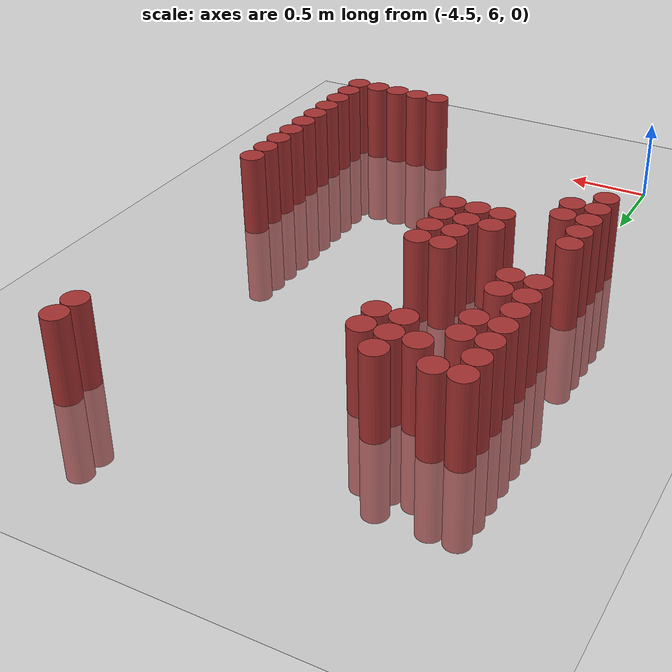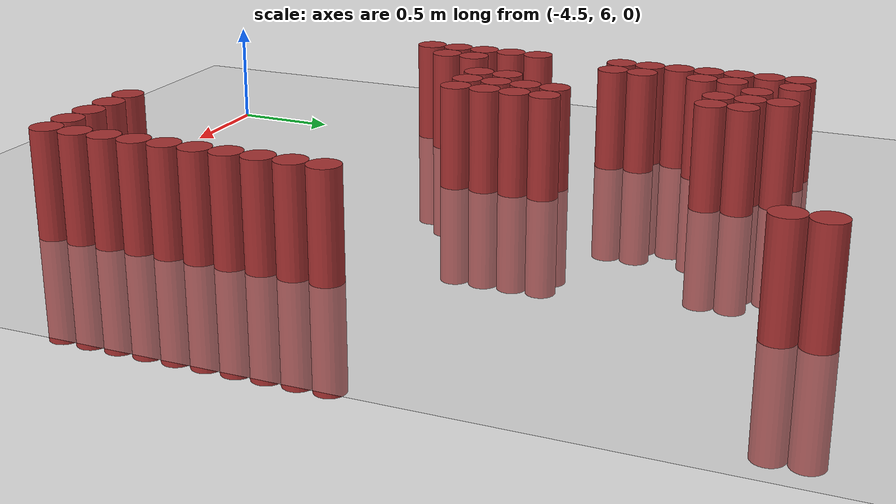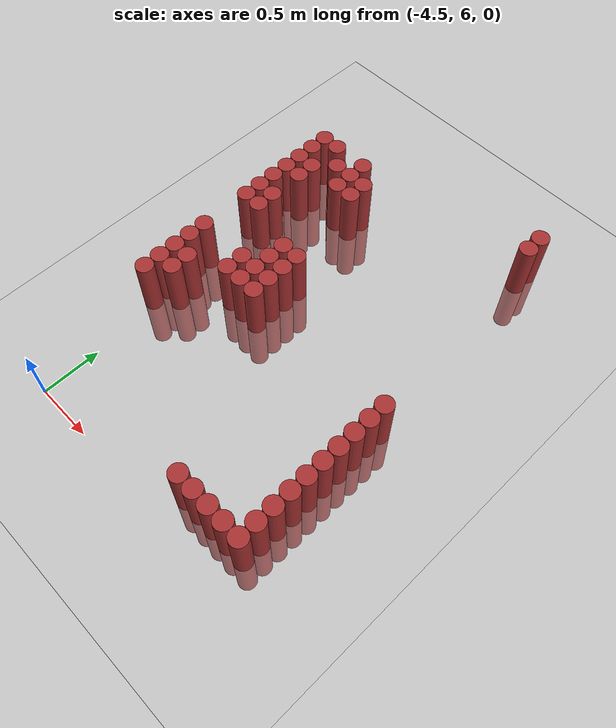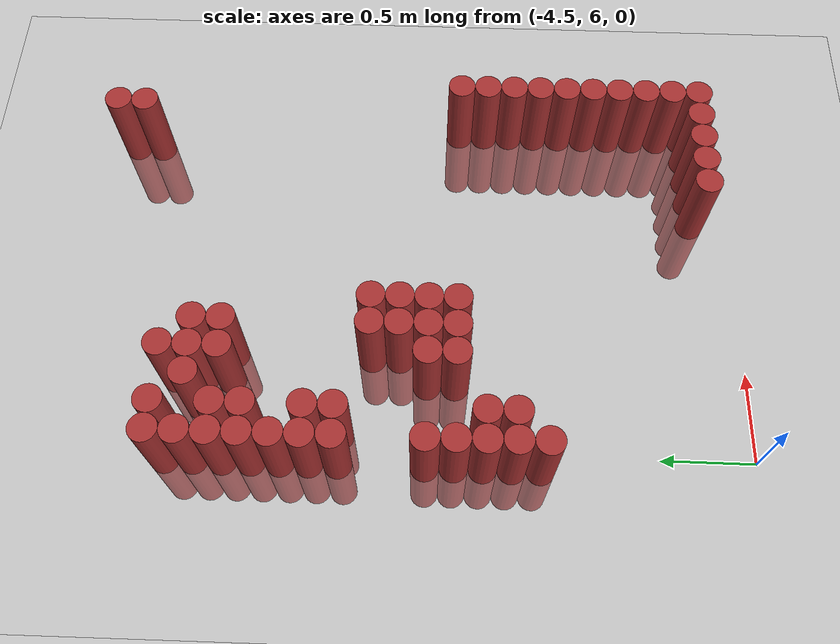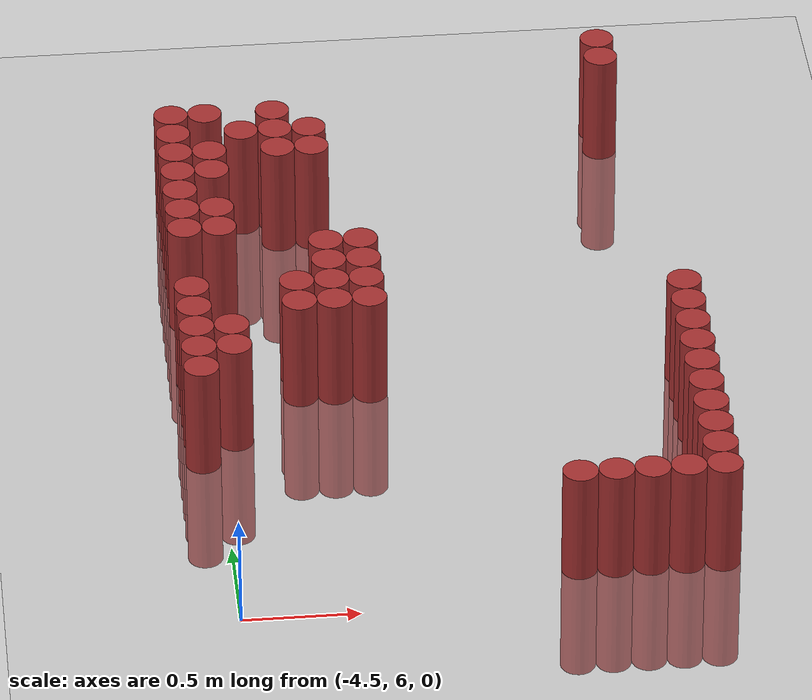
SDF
<sdf version="1.6">
 <world name="default">
  <model name="ground_plane">
   <static>1</static>
   <link name="link">
    <collision name="collision">
     <geometry><plane><normal>0 0 1</normal><size>100 100</size></plane></geometry>
     <surface><friction><ode><mu>100</mu><mu2>50</mu2></ode></friction></surface>
    </collision>
    <visual name="visual">
     <cast_shadows>0</cast_shadows>
     <geometry><plane><normal>0 0 1</normal><size>100 100</size></plane></geometry>
     <material>
      <script><uri>file://media/materials/scripts/gazebo.material</uri><name>Gazebo/Grey</name></script>
     </material>
    </visual>
   </link>
  </model>
  <model name="unit_cylinder_272">
   <static>1</static>
   <pose>-4.575000 7.125000 0.000000 0.000000 0.000000 0.000000</pose>
   <link name="link">
    <inertial>
     <mass>1</mass>
     <inertia><ixx>0.145833</ixx><ixy>0</ixy><ixz>0</ixz><iyy>0.145833</iyy><iyz>0</iyz><izz>0.125</izz></inertia>
    </inertial>
    <collision name="collision">
     <geometry><cylinder><radius>0.075000</radius><length>1</length></cylinder></geometry>
    </collision>
    <visual name="visual">
     <geometry><cylinder><radius>0.075000</radius><length>1</length></cylinder></geometry>
     <material>
      <ambient>0.648000 0.192000 0.192000 1</ambient>
      <diffuse>0.648000 0.192000 0.192000 1</diffuse>
     </material>
     <material>
      <script><name>Gazebo/Grey</name><uri>file://media/materials/scripts/gazebo.material</uri></script>
     </material>
    </visual>
   </link>
  </model>
  <model name="unit_cylinder_273">
   <static>1</static>
   <pose>-4.575000 7.275000 0.000000 0.000000 0.000000 0.000000</pose>
   <link name="link">
    <inertial>
     <mass>1</mass>
     <inertia><ixx>0.145833</ixx><ixy>0</ixy><ixz>0</ixz><iyy>0.145833</iyy><iyz>0</iyz><izz>0.125</izz></inertia>
    </inertial>
    <collision name="collision">
     <geometry><cylinder><radius>0.075000</radius><length>1</length></cylinder></geometry>
    </collision>
    <visual name="visual">
     <geometry><cylinder><radius>0.075000</radius><length>1</length></cylinder></geometry>
     <material>
      <ambient>0.648000 0.192000 0.192000 1</ambient>
      <diffuse>0.648000 0.192000 0.192000 1</diffuse>
     </material>
     <material>
      <script><name>Gazebo/Grey</name><uri>file://media/materials/scripts/gazebo.material</uri></script>
     </material>
    </visual>
   </link>
  </model>
  <model name="unit_cylinder_274">
   <static>1</static>
   <pose>-4.575000 7.425000 0.000000 0.000000 0.000000 0.000000</pose>
   <link name="link">
    <inertial>
     <mass>1</mass>
     <inertia><ixx>0.145833</ixx><ixy>0</ixy><ixz>0</ixz><iyy>0.145833</iyy><iyz>0</iyz><izz>0.125</izz></inertia>
    </inertial>
    <collision name="collision">
     <geometry><cylinder><radius>0.075000</radius><length>1</length></cylinder></geometry>
    </collision>
    <visual name="visual">
     <geometry><cylinder><radius>0.075000</radius><length>1</length></cylinder></geometry>
     <material>
      <ambient>0.648000 0.192000 0.192000 1</ambient>
      <diffuse>0.648000 0.192000 0.192000 1</diffuse>
     </material>
     <material>
      <script><name>Gazebo/Grey</name><uri>file://media/materials/scripts/gazebo.material</uri></script>
     </material>
    </visual>
   </link>
  </model>
  <model name="unit_cylinder_275">
   <static>1</static>
   <pose>-4.575000 7.575000 0.000000 0.000000 0.000000 0.000000</pose>
   <link name="link">
    <inertial>
     <mass>1</mass>
     <inertia><ixx>0.145833</ixx><ixy>0</ixy><ixz>0</ixz><iyy>0.145833</iyy><iyz>0</iyz><izz>0.125</izz></inertia>
    </inertial>
    <collision name="collision">
     <geometry><cylinder><radius>0.075000</radius><length>1</length></cylinder></geometry>
    </collision>
    <visual name="visual">
     <geometry><cylinder><radius>0.075000</radius><length>1</length></cylinder></geometry>
     <material>
      <ambient>0.648000 0.192000 0.192000 1</ambient>
      <diffuse>0.648000 0.192000 0.192000 1</diffuse>
     </material>
     <material>
      <script><name>Gazebo/Grey</name><uri>file://media/materials/scripts/gazebo.material</uri></script>
     </material>
    </visual>
   </link>
  </model>
  <model name="unit_cylinder_276">
   <static>1</static>
   <pose>-4.575000 7.725000 0.000000 0.000000 0.000000 0.000000</pose>
   <link name="link">
    <inertial>
     <mass>1</mass>
     <inertia><ixx>0.145833</ixx><ixy>0</ixy><ixz>0</ixz><iyy>0.145833</iyy><iyz>0</iyz><izz>0.125</izz></inertia>
    </inertial>
    <collision name="collision">
     <geometry><cylinder><radius>0.075000</radius><length>1</length></cylinder></geometry>
    </collision>
    <visual name="visual">
     <geometry><cylinder><radius>0.075000</radius><length>1</length></cylinder></geometry>
     <material>
      <ambient>0.648000 0.192000 0.192000 1</ambient>
      <diffuse>0.648000 0.192000 0.192000 1</diffuse>
     </material>
     <material>
      <script><name>Gazebo/Grey</name><uri>file://media/materials/scripts/gazebo.material</uri></script>
     </material>
    </visual>
   </link>
  </model>
  <model name="unit_cylinder_277">
   <static>1</static>
   <pose>-4.575000 8.175000 0.000000 0.000000 0.000000 0.000000</pose>
   <link name="link">
    <inertial>
     <mass>1</mass>
     <inertia><ixx>0.145833</ixx><ixy>0</ixy><ixz>0</ixz><iyy>0.145833</iyy><iyz>0</iyz><izz>0.125</izz></inertia>
    </inertial>
    <collision name="collision">
     <geometry><cylinder><radius>0.075000</radius><length>1</length></cylinder></geometry>
    </collision>
    <visual name="visual">
     <geometry><cylinder><radius>0.075000</radius><length>1</length></cylinder></geometry>
     <material>
      <ambient>0.648000 0.192000 0.192000 1</ambient>
      <diffuse>0.648000 0.192000 0.192000 1</diffuse>
     </material>
     <material>
      <script><name>Gazebo/Grey</name><uri>file://media/materials/scripts/gazebo.material</uri></script>
     </material>
    </visual>
   </link>
  </model>
  <model name="unit_cylinder_278">
   <static>1</static>
   <pose>-4.575000 8.325000 0.000000 0.000000 0.000000 0.000000</pose>
   <link name="link">
    <inertial>
     <mass>1</mass>
     <inertia><ixx>0.145833</ixx><ixy>0</ixy><ixz>0</ixz><iyy>0.145833</iyy><iyz>0</iyz><izz>0.125</izz></inertia>
    </inertial>
    <collision name="collision">
     <geometry><cylinder><radius>0.075000</radius><length>1</length></cylinder></geometry>
    </collision>
    <visual name="visual">
     <geometry><cylinder><radius>0.075000</radius><length>1</length></cylinder></geometry>
     <material>
      <ambient>0.648000 0.192000 0.192000 1</ambient>
      <diffuse>0.648000 0.192000 0.192000 1</diffuse>
     </material>
     <material>
      <script><name>Gazebo/Grey</name><uri>file://media/materials/scripts/gazebo.material</uri></script>
     </material>
    </visual>
   </link>
  </model>
  <model name="unit_cylinder_279">
   <static>1</static>
   <pose>-4.575000 8.475000 0.000000 0.000000 0.000000 0.000000</pose>
   <link name="link">
    <inertial>
     <mass>1</mass>
     <inertia><ixx>0.145833</ixx><ixy>0</ixy><ixz>0</ixz><iyy>0.145833</iyy><iyz>0</iyz><izz>0.125</izz></inertia>
    </inertial>
    <collision name="collision">
     <geometry><cylinder><radius>0.075000</radius><length>1</length></cylinder></geometry>
    </collision>
    <visual name="visual">
     <geometry><cylinder><radius>0.075000</radius><length>1</length></cylinder></geometry>
     <material>
      <ambient>0.648000 0.192000 0.192000 1</ambient>
      <diffuse>0.648000 0.192000 0.192000 1</diffuse>
     </material>
     <material>
      <script><name>Gazebo/Grey</name><uri>file://media/materials/scripts/gazebo.material</uri></script>
     </material>
    </visual>
   </link>
  </model>
  <model name="unit_cylinder_280">
   <static>1</static>
   <pose>-4.575000 8.625000 0.000000 0.000000 0.000000 0.000000</pose>
   <link name="link">
    <inertial>
     <mass>1</mass>
     <inertia><ixx>0.145833</ixx><ixy>0</ixy><ixz>0</ixz><iyy>0.145833</iyy><iyz>0</iyz><izz>0.125</izz></inertia>
    </inertial>
    <collision name="collision">
     <geometry><cylinder><radius>0.075000</radius><length>1</length></cylinder></geometry>
    </collision>
    <visual name="visual">
     <geometry><cylinder><radius>0.075000</radius><length>1</length></cylinder></geometry>
     <material>
      <ambient>0.648000 0.192000 0.192000 1</ambient>
      <diffuse>0.648000 0.192000 0.192000 1</diffuse>
     </material>
     <material>
      <script><name>Gazebo/Grey</name><uri>file://media/materials/scripts/gazebo.material</uri></script>
     </material>
    </visual>
   </link>
  </model>
  <model name="unit_cylinder_281">
   <static>1</static>
   <pose>-4.575000 8.775000 0.000000 0.000000 0.000000 0.000000</pose>
   <link name="link">
    <inertial>
     <mass>1</mass>
     <inertia><ixx>0.145833</ixx><ixy>0</ixy><ixz>0</ixz><iyy>0.145833</iyy><iyz>0</iyz><izz>0.125</izz></inertia>
    </inertial>
    <collision name="collision">
     <geometry><cylinder><radius>0.075000</radius><length>1</length></cylinder></geometry>
    </collision>
    <visual name="visual">
     <geometry><cylinder><radius>0.075000</radius><length>1</length></cylinder></geometry>
     <material>
      <ambient>0.648000 0.192000 0.192000 1</ambient>
      <diffuse>0.648000 0.192000 0.192000 1</diffuse>
     </material>
     <material>
      <script><name>Gazebo/Grey</name><uri>file://media/materials/scripts/gazebo.material</uri></script>
     </material>
    </visual>
   </link>
  </model>
  <model name="unit_cylinder_282">
   <static>1</static>
   <pose>-4.575000 8.925000 0.000000 0.000000 0.000000 0.000000</pose>
   <link name="link">
    <inertial>
     <mass>1</mass>
     <inertia><ixx>0.145833</ixx><ixy>0</ixy><ixz>0</ixz><iyy>0.145833</iyy><iyz>0</iyz><izz>0.125</izz></inertia>
    </inertial>
    <collision name="collision">
     <geometry><cylinder><radius>0.075000</radius><length>1</length></cylinder></geometry>
    </collision>
    <visual name="visual">
     <geometry><cylinder><radius>0.075000</radius><length>1</length></cylinder></geometry>
     <material>
      <ambient>0.648000 0.192000 0.192000 1</ambient>
      <diffuse>0.648000 0.192000 0.192000 1</diffuse>
     </material>
     <material>
      <script><name>Gazebo/Grey</name><uri>file://media/materials/scripts/gazebo.material</uri></script>
     </material>
    </visual>
   </link>
  </model>
  <model name="unit_cylinder_283">
   <static>1</static>
   <pose>-4.575000 9.075000 0.000000 0.000000 0.000000 0.000000</pose>
   <link name="link">
    <inertial>
     <mass>1</mass>
     <inertia><ixx>0.145833</ixx><ixy>0</ixy><ixz>0</ixz><iyy>0.145833</iyy><iyz>0</iyz><izz>0.125</izz></inertia>
    </inertial>
    <collision name="collision">
     <geometry><cylinder><radius>0.075000</radius><length>1</length></cylinder></geometry>
    </collision>
    <visual name="visual">
     <geometry><cylinder><radius>0.075000</radius><length>1</length></cylinder></geometry>
     <material>
      <ambient>0.648000 0.192000 0.192000 1</ambient>
      <diffuse>0.648000 0.192000 0.192000 1</diffuse>
     </material>
     <material>
      <script><name>Gazebo/Grey</name><uri>file://media/materials/scripts/gazebo.material</uri></script>
     </material>
    </visual>
   </link>
  </model>
  <model name="unit_cylinder_284">
   <static>1</static>
   <pose>-4.425000 7.275000 0.000000 0.000000 0.000000 0.000000</pose>
   <link name="link">
    <inertial>
     <mass>1</mass>
     <inertia><ixx>0.145833</ixx><ixy>0</ixy><ixz>0</ixz><iyy>0.145833</iyy><iyz>0</iyz><izz>0.125</izz></inertia>
    </inertial>
    <collision name="collision">
     <geometry><cylinder><radius>0.075000</radius><length>1</length></cylinder></geometry>
    </collision>
    <visual name="visual">
     <geometry><cylinder><radius>0.075000</radius><length>1</length></cylinder></geometry>
     <material>
      <ambient>0.648000 0.192000 0.192000 1</ambient>
      <diffuse>0.648000 0.192000 0.192000 1</diffuse>
     </material>
     <material>
      <script><name>Gazebo/Grey</name><uri>file://media/materials/scripts/gazebo.material</uri></script>
     </material>
    </visual>
   </link>
  </model>
  <model name="unit_cylinder_285">
   <static>1</static>
   <pose>-4.425000 7.425000 0.000000 0.000000 0.000000 0.000000</pose>
   <link name="link">
    <inertial>
     <mass>1</mass>
     <inertia><ixx>0.145833</ixx><ixy>0</ixy><ixz>0</ixz><iyy>0.145833</iyy><iyz>0</iyz><izz>0.125</izz></inertia>
    </inertial>
    <collision name="collision">
     <geometry><cylinder><radius>0.075000</radius><length>1</length></cylinder></geometry>
    </collision>
    <visual name="visual">
     <geometry><cylinder><radius>0.075000</radius><length>1</length></cylinder></geometry>
     <material>
      <ambient>0.648000 0.192000 0.192000 1</ambient>
      <diffuse>0.648000 0.192000 0.192000 1</diffuse>
     </material>
     <material>
      <script><name>Gazebo/Grey</name><uri>file://media/materials/scripts/gazebo.material</uri></script>
     </material>
    </visual>
   </link>
  </model>
  <model name="unit_cylinder_286">
   <static>1</static>
   <pose>-4.425000 8.175000 0.000000 0.000000 0.000000 0.000000</pose>
   <link name="link">
    <inertial>
     <mass>1</mass>
     <inertia><ixx>0.145833</ixx><ixy>0</ixy><ixz>0</ixz><iyy>0.145833</iyy><iyz>0</iyz><izz>0.125</izz></inertia>
    </inertial>
    <collision name="collision">
     <geometry><cylinder><radius>0.075000</radius><length>1</length></cylinder></geometry>
    </collision>
    <visual name="visual">
     <geometry><cylinder><radius>0.075000</radius><length>1</length></cylinder></geometry>
     <material>
      <ambient>0.648000 0.192000 0.192000 1</ambient>
      <diffuse>0.648000 0.192000 0.192000 1</diffuse>
     </material>
     <material>
      <script><name>Gazebo/Grey</name><uri>file://media/materials/scripts/gazebo.material</uri></script>
     </material>
    </visual>
   </link>
  </model>
  <model name="unit_cylinder_287">
   <static>1</static>
   <pose>-4.425000 8.325000 0.000000 0.000000 0.000000 0.000000</pose>
   <link name="link">
    <inertial>
     <mass>1</mass>
     <inertia><ixx>0.145833</ixx><ixy>0</ixy><ixz>0</ixz><iyy>0.145833</iyy><iyz>0</iyz><izz>0.125</izz></inertia>
    </inertial>
    <collision name="collision">
     <geometry><cylinder><radius>0.075000</radius><length>1</length></cylinder></geometry>
    </collision>
    <visual name="visual">
     <geometry><cylinder><radius>0.075000</radius><length>1</length></cylinder></geometry>
     <material>
      <ambient>0.648000 0.192000 0.192000 1</ambient>
      <diffuse>0.648000 0.192000 0.192000 1</diffuse>
     </material>
     <material>
      <script><name>Gazebo/Grey</name><uri>file://media/materials/scripts/gazebo.material</uri></script>
     </material>
    </visual>
   </link>
  </model>
  <model name="unit_cylinder_288">
   <static>1</static>
   <pose>-4.425000 8.625000 0.000000 0.000000 0.000000 0.000000</pose>
   <link name="link">
    <inertial>
     <mass>1</mass>
     <inertia><ixx>0.145833</ixx><ixy>0</ixy><ixz>0</ixz><iyy>0.145833</iyy><iyz>0</iyz><izz>0.125</izz></inertia>
    </inertial>
    <collision name="collision">
     <geometry><cylinder><radius>0.075000</radius><length>1</length></cylinder></geometry>
    </collision>
    <visual name="visual">
     <geometry><cylinder><radius>0.075000</radius><length>1</length></cylinder></geometry>
     <material>
      <ambient>0.648000 0.192000 0.192000 1</ambient>
      <diffuse>0.648000 0.192000 0.192000 1</diffuse>
     </material>
     <material>
      <script><name>Gazebo/Grey</name><uri>file://media/materials/scripts/gazebo.material</uri></script>
     </material>
    </visual>
   </link>
  </model>
  <model name="unit_cylinder_289">
   <static>1</static>
   <pose>-4.425000 8.775000 0.000000 0.000000 0.000000 0.000000</pose>
   <link name="link">
    <inertial>
     <mass>1</mass>
     <inertia><ixx>0.145833</ixx><ixy>0</ixy><ixz>0</ixz><iyy>0.145833</iyy><iyz>0</iyz><izz>0.125</izz></inertia>
    </inertial>
    <collision name="collision">
     <geometry><cylinder><radius>0.075000</radius><length>1</length></cylinder></geometry>
    </collision>
    <visual name="visual">
     <geometry><cylinder><radius>0.075000</radius><length>1</length></cylinder></geometry>
     <material>
      <ambient>0.648000 0.192000 0.192000 1</ambient>
      <diffuse>0.648000 0.192000 0.192000 1</diffuse>
     </material>
     <material>
      <script><name>Gazebo/Grey</name><uri>file://media/materials/scripts/gazebo.material</uri></script>
     </material>
    </visual>
   </link>
  </model>
  <model name="unit_cylinder_290">
   <static>1</static>
   <pose>-4.425000 9.075000 0.000000 0.000000 0.000000 0.000000</pose>
   <link name="link">
    <inertial>
     <mass>1</mass>
     <inertia><ixx>0.145833</ixx><ixy>0</ixy><ixz>0</ixz><iyy>0.145833</iyy><iyz>0</iyz><izz>0.125</izz></inertia>
    </inertial>
    <collision name="collision">
     <geometry><cylinder><radius>0.075000</radius><length>1</length></cylinder></geometry>
    </collision>
    <visual name="visual">
     <geometry><cylinder><radius>0.075000</radius><length>1</length></cylinder></geometry>
     <material>
      <ambient>0.648000 0.192000 0.192000 1</ambient>
      <diffuse>0.648000 0.192000 0.192000 1</diffuse>
     </material>
     <material>
      <script><name>Gazebo/Grey</name><uri>file://media/materials/scripts/gazebo.material</uri></script>
     </material>
    </visual>
   </link>
  </model>
  <model name="unit_cylinder_291">
   <static>1</static>
   <pose>-4.275000 8.925000 0.000000 0.000000 0.000000 0.000000</pose>
   <link name="link">
    <inertial>
     <mass>1</mass>
     <inertia><ixx>0.145833</ixx><ixy>0</ixy><ixz>0</ixz><iyy>0.145833</iyy><iyz>0</iyz><izz>0.125</izz></inertia>
    </inertial>
    <collision name="collision">
     <geometry><cylinder><radius>0.075000</radius><length>1</length></cylinder></geometry>
    </collision>
    <visual name="visual">
     <geometry><cylinder><radius>0.075000</radius><length>1</length></cylinder></geometry>
     <material>
      <ambient>0.648000 0.192000 0.192000 1</ambient>
      <diffuse>0.648000 0.192000 0.192000 1</diffuse>
     </material>
     <material>
      <script><name>Gazebo/Grey</name><uri>file://media/materials/scripts/gazebo.material</uri></script>
     </material>
    </visual>
   </link>
  </model>
  <model name="unit_cylinder_292">
   <static>1</static>
   <pose>-4.125000 7.575000 0.000000 0.000000 0.000000 0.000000</pose>
   <link name="link">
    <inertial>
     <mass>1</mass>
     <inertia><ixx>0.145833</ixx><ixy>0</ixy><ixz>0</ixz><iyy>0.145833</iyy><iyz>0</iyz><izz>0.125</izz></inertia>
    </inertial>
    <collision name="collision">
     <geometry><cylinder><radius>0.075000</radius><length>1</length></cylinder></geometry>
    </collision>
    <visual name="visual">
     <geometry><cylinder><radius>0.075000</radius><length>1</length></cylinder></geometry>
     <material>
      <ambient>0.648000 0.192000 0.192000 1</ambient>
      <diffuse>0.648000 0.192000 0.192000 1</diffuse>
     </material>
     <material>
      <script><name>Gazebo/Grey</name><uri>file://media/materials/scripts/gazebo.material</uri></script>
     </material>
    </visual>
   </link>
  </model>
  <model name="unit_cylinder_293">
   <static>1</static>
   <pose>-4.125000 7.725000 0.000000 0.000000 0.000000 0.000000</pose>
   <link name="link">
    <inertial>
     <mass>1</mass>
     <inertia><ixx>0.145833</ixx><ixy>0</ixy><ixz>0</ixz><iyy>0.145833</iyy><iyz>0</iyz><izz>0.125</izz></inertia>
    </inertial>
    <collision name="collision">
     <geometry><cylinder><radius>0.075000</radius><length>1</length></cylinder></geometry>
    </collision>
    <visual name="visual">
     <geometry><cylinder><radius>0.075000</radius><length>1</length></cylinder></geometry>
     <material>
      <ambient>0.648000 0.192000 0.192000 1</ambient>
      <diffuse>0.648000 0.192000 0.192000 1</diffuse>
     </material>
     <material>
      <script><name>Gazebo/Grey</name><uri>file://media/materials/scripts/gazebo.material</uri></script>
     </material>
    </visual>
   </link>
  </model>
  <model name="unit_cylinder_294">
   <static>1</static>
   <pose>-4.125000 8.775000 0.000000 0.000000 0.000000 0.000000</pose>
   <link name="link">
    <inertial>
     <mass>1</mass>
     <inertia><ixx>0.145833</ixx><ixy>0</ixy><ixz>0</ixz><iyy>0.145833</iyy><iyz>0</iyz><izz>0.125</izz></inertia>
    </inertial>
    <collision name="collision">
     <geometry><cylinder><radius>0.075000</radius><length>1</length></cylinder></geometry>
    </collision>
    <visual name="visual">
     <geometry><cylinder><radius>0.075000</radius><length>1</length></cylinder></geometry>
     <material>
      <ambient>0.648000 0.192000 0.192000 1</ambient>
      <diffuse>0.648000 0.192000 0.192000 1</diffuse>
     </material>
     <material>
      <script><name>Gazebo/Grey</name><uri>file://media/materials/scripts/gazebo.material</uri></script>
     </material>
    </visual>
   </link>
  </model>
  <model name="unit_cylinder_295">
   <static>1</static>
   <pose>-4.125000 8.925000 0.000000 0.000000 0.000000 0.000000</pose>
   <link name="link">
    <inertial>
     <mass>1</mass>
     <inertia><ixx>0.145833</ixx><ixy>0</ixy><ixz>0</ixz><iyy>0.145833</iyy><iyz>0</iyz><izz>0.125</izz></inertia>
    </inertial>
    <collision name="collision">
     <geometry><cylinder><radius>0.075000</radius><length>1</length></cylinder></geometry>
    </collision>
    <visual name="visual">
     <geometry><cylinder><radius>0.075000</radius><length>1</length></cylinder></geometry>
     <material>
      <ambient>0.648000 0.192000 0.192000 1</ambient>
      <diffuse>0.648000 0.192000 0.192000 1</diffuse>
     </material>
     <material>
      <script><name>Gazebo/Grey</name><uri>file://media/materials/scripts/gazebo.material</uri></script>
     </material>
    </visual>
   </link>
  </model>
  <model name="unit_cylinder_296">
   <static>1</static>
   <pose>-4.125000 9.075000 0.000000 0.000000 0.000000 0.000000</pose>
   <link name="link">
    <inertial>
     <mass>1</mass>
     <inertia><ixx>0.145833</ixx><ixy>0</ixy><ixz>0</ixz><iyy>0.145833</iyy><iyz>0</iyz><izz>0.125</izz></inertia>
    </inertial>
    <collision name="collision">
     <geometry><cylinder><radius>0.075000</radius><length>1</length></cylinder></geometry>
    </collision>
    <visual name="visual">
     <geometry><cylinder><radius>0.075000</radius><length>1</length></cylinder></geometry>
     <material>
      <ambient>0.648000 0.192000 0.192000 1</ambient>
      <diffuse>0.648000 0.192000 0.192000 1</diffuse>
     </material>
     <material>
      <script><name>Gazebo/Grey</name><uri>file://media/materials/scripts/gazebo.material</uri></script>
     </material>
    </visual>
   </link>
  </model>
  <model name="unit_cylinder_297">
   <static>1</static>
   <pose>-3.975000 7.575000 0.000000 0.000000 0.000000 0.000000</pose>
   <link name="link">
    <inertial>
     <mass>1</mass>
     <inertia><ixx>0.145833</ixx><ixy>0</ixy><ixz>0</ixz><iyy>0.145833</iyy><iyz>0</iyz><izz>0.125</izz></inertia>
    </inertial>
    <collision name="collision">
     <geometry><cylinder><radius>0.075000</radius><length>1</length></cylinder></geometry>
    </collision>
    <visual name="visual">
     <geometry><cylinder><radius>0.075000</radius><length>1</length></cylinder></geometry>
     <material>
      <ambient>0.648000 0.192000 0.192000 1</ambient>
      <diffuse>0.648000 0.192000 0.192000 1</diffuse>
     </material>
     <material>
      <script><name>Gazebo/Grey</name><uri>file://media/materials/scripts/gazebo.material</uri></script>
     </material>
    </visual>
   </link>
  </model>
  <model name="unit_cylinder_298">
   <static>1</static>
   <pose>-3.975000 7.725000 0.000000 0.000000 0.000000 0.000000</pose>
   <link name="link">
    <inertial>
     <mass>1</mass>
     <inertia><ixx>0.145833</ixx><ixy>0</ixy><ixz>0</ixz><iyy>0.145833</iyy><iyz>0</iyz><izz>0.125</izz></inertia>
    </inertial>
    <collision name="collision">
     <geometry><cylinder><radius>0.075000</radius><length>1</length></cylinder></geometry>
    </collision>
    <visual name="visual">
     <geometry><cylinder><radius>0.075000</radius><length>1</length></cylinder></geometry>
     <material>
      <ambient>0.648000 0.192000 0.192000 1</ambient>
      <diffuse>0.648000 0.192000 0.192000 1</diffuse>
     </material>
     <material>
      <script><name>Gazebo/Grey</name><uri>file://media/materials/scripts/gazebo.material</uri></script>
     </material>
    </visual>
   </link>
  </model>
  <model name="unit_cylinder_299">
   <static>1</static>
   <pose>-3.975000 7.875000 0.000000 0.000000 0.000000 0.000000</pose>
   <link name="link">
    <inertial>
     <mass>1</mass>
     <inertia><ixx>0.145833</ixx><ixy>0</ixy><ixz>0</ixz><iyy>0.145833</iyy><iyz>0</iyz><izz>0.125</izz></inertia>
    </inertial>
    <collision name="collision">
     <geometry><cylinder><radius>0.075000</radius><length>1</length></cylinder></geometry>
    </collision>
    <visual name="visual">
     <geometry><cylinder><radius>0.075000</radius><length>1</length></cylinder></geometry>
     <material>
      <ambient>0.648000 0.192000 0.192000 1</ambient>
      <diffuse>0.648000 0.192000 0.192000 1</diffuse>
     </material>
     <material>
      <script><name>Gazebo/Grey</name><uri>file://media/materials/scripts/gazebo.material</uri></script>
     </material>
    </visual>
   </link>
  </model>
  <model name="unit_cylinder_300">
   <static>1</static>
   <pose>-3.975000 8.025000 0.000000 0.000000 0.000000 0.000000</pose>
   <link name="link">
    <inertial>
     <mass>1</mass>
     <inertia><ixx>0.145833</ixx><ixy>0</ixy><ixz>0</ixz><iyy>0.145833</iyy><iyz>0</iyz><izz>0.125</izz></inertia>
    </inertial>
    <collision name="collision">
     <geometry><cylinder><radius>0.075000</radius><length>1</length></cylinder></geometry>
    </collision>
    <visual name="visual">
     <geometry><cylinder><radius>0.075000</radius><length>1</length></cylinder></geometry>
     <material>
      <ambient>0.648000 0.192000 0.192000 1</ambient>
      <diffuse>0.648000 0.192000 0.192000 1</diffuse>
     </material>
     <material>
      <script><name>Gazebo/Grey</name><uri>file://media/materials/scripts/gazebo.material</uri></script>
     </material>
    </visual>
   </link>
  </model>
  <model name="unit_cylinder_301">
   <static>1</static>
   <pose>-3.975000 8.775000 0.000000 0.000000 0.000000 0.000000</pose>
   <link name="link">
    <inertial>
     <mass>1</mass>
     <inertia><ixx>0.145833</ixx><ixy>0</ixy><ixz>0</ixz><iyy>0.145833</iyy><iyz>0</iyz><izz>0.125</izz></inertia>
    </inertial>
    <collision name="collision">
     <geometry><cylinder><radius>0.075000</radius><length>1</length></cylinder></geometry>
    </collision>
    <visual name="visual">
     <geometry><cylinder><radius>0.075000</radius><length>1</length></cylinder></geometry>
     <material>
      <ambient>0.648000 0.192000 0.192000 1</ambient>
      <diffuse>0.648000 0.192000 0.192000 1</diffuse>
     </material>
     <material>
      <script><name>Gazebo/Grey</name><uri>file://media/materials/scripts/gazebo.material</uri></script>
     </material>
    </visual>
   </link>
  </model>
  <model name="unit_cylinder_302">
   <static>1</static>
   <pose>-3.975000 8.925000 0.000000 0.000000 0.000000 0.000000</pose>
   <link name="link">
    <inertial>
     <mass>1</mass>
     <inertia><ixx>0.145833</ixx><ixy>0</ixy><ixz>0</ixz><iyy>0.145833</iyy><iyz>0</iyz><izz>0.125</izz></inertia>
    </inertial>
    <collision name="collision">
     <geometry><cylinder><radius>0.075000</radius><length>1</length></cylinder></geometry>
    </collision>
    <visual name="visual">
     <geometry><cylinder><radius>0.075000</radius><length>1</length></cylinder></geometry>
     <material>
      <ambient>0.648000 0.192000 0.192000 1</ambient>
      <diffuse>0.648000 0.192000 0.192000 1</diffuse>
     </material>
     <material>
      <script><name>Gazebo/Grey</name><uri>file://media/materials/scripts/gazebo.material</uri></script>
     </material>
    </visual>
   </link>
  </model>
  <model name="unit_cylinder_303">
   <static>1</static>
   <pose>-3.825000 7.575000 0.000000 0.000000 0.000000 0.000000</pose>
   <link name="link">
    <inertial>
     <mass>1</mass>
     <inertia><ixx>0.145833</ixx><ixy>0</ixy><ixz>0</ixz><iyy>0.145833</iyy><iyz>0</iyz><izz>0.125</izz></inertia>
    </inertial>
    <collision name="collision">
     <geometry><cylinder><radius>0.075000</radius><length>1</length></cylinder></geometry>
    </collision>
    <visual name="visual">
     <geometry><cylinder><radius>0.075000</radius><length>1</length></cylinder></geometry>
     <material>
      <ambient>0.648000 0.192000 0.192000 1</ambient>
      <diffuse>0.648000 0.192000 0.192000 1</diffuse>
     </material>
     <material>
      <script><name>Gazebo/Grey</name><uri>file://media/materials/scripts/gazebo.material</uri></script>
     </material>
    </visual>
   </link>
  </model>
  <model name="unit_cylinder_304">
   <static>1</static>
   <pose>-3.825000 7.725000 0.000000 0.000000 0.000000 0.000000</pose>
   <link name="link">
    <inertial>
     <mass>1</mass>
     <inertia><ixx>0.145833</ixx><ixy>0</ixy><ixz>0</ixz><iyy>0.145833</iyy><iyz>0</iyz><izz>0.125</izz></inertia>
    </inertial>
    <collision name="collision">
     <geometry><cylinder><radius>0.075000</radius><length>1</length></cylinder></geometry>
    </collision>
    <visual name="visual">
     <geometry><cylinder><radius>0.075000</radius><length>1</length></cylinder></geometry>
     <material>
      <ambient>0.648000 0.192000 0.192000 1</ambient>
      <diffuse>0.648000 0.192000 0.192000 1</diffuse>
     </material>
     <material>
      <script><name>Gazebo/Grey</name><uri>file://media/materials/scripts/gazebo.material</uri></script>
     </material>
    </visual>
   </link>
  </model>
  <model name="unit_cylinder_305">
   <static>1</static>
   <pose>-3.825000 7.875000 0.000000 0.000000 0.000000 0.000000</pose>
   <link name="link">
    <inertial>
     <mass>1</mass>
     <inertia><ixx>0.145833</ixx><ixy>0</ixy><ixz>0</ixz><iyy>0.145833</iyy><iyz>0</iyz><izz>0.125</izz></inertia>
    </inertial>
    <collision name="collision">
     <geometry><cylinder><radius>0.075000</radius><length>1</length></cylinder></geometry>
    </collision>
    <visual name="visual">
     <geometry><cylinder><radius>0.075000</radius><length>1</length></cylinder></geometry>
     <material>
      <ambient>0.648000 0.192000 0.192000 1</ambient>
      <diffuse>0.648000 0.192000 0.192000 1</diffuse>
     </material>
     <material>
      <script><name>Gazebo/Grey</name><uri>file://media/materials/scripts/gazebo.material</uri></script>
     </material>
    </visual>
   </link>
  </model>
  <model name="unit_cylinder_306">
   <static>1</static>
   <pose>-3.825000 8.025000 0.000000 0.000000 0.000000 0.000000</pose>
   <link name="link">
    <inertial>
     <mass>1</mass>
     <inertia><ixx>0.145833</ixx><ixy>0</ixy><ixz>0</ixz><iyy>0.145833</iyy><iyz>0</iyz><izz>0.125</izz></inertia>
    </inertial>
    <collision name="collision">
     <geometry><cylinder><radius>0.075000</radius><length>1</length></cylinder></geometry>
    </collision>
    <visual name="visual">
     <geometry><cylinder><radius>0.075000</radius><length>1</length></cylinder></geometry>
     <material>
      <ambient>0.648000 0.192000 0.192000 1</ambient>
      <diffuse>0.648000 0.192000 0.192000 1</diffuse>
     </material>
     <material>
      <script><name>Gazebo/Grey</name><uri>file://media/materials/scripts/gazebo.material</uri></script>
     </material>
    </visual>
   </link>
  </model>
  <model name="unit_cylinder_320">
   <static>1</static>
   <pose>-3.075000 6.225000 0.000000 0.000000 0.000000 0.000000</pose>
   <link name="link">
    <inertial>
     <mass>1</mass>
     <inertia><ixx>0.145833</ixx><ixy>0</ixy><ixz>0</ixz><iyy>0.145833</iyy><iyz>0</iyz><izz>0.125</izz></inertia>
    </inertial>
    <collision name="collision">
     <geometry><cylinder><radius>0.075000</radius><length>1</length></cylinder></geometry>
    </collision>
    <visual name="visual">
     <geometry><cylinder><radius>0.075000</radius><length>1</length></cylinder></geometry>
     <material>
      <ambient>0.648000 0.192000 0.192000 1</ambient>
      <diffuse>0.648000 0.192000 0.192000 1</diffuse>
     </material>
     <material>
      <script><name>Gazebo/Grey</name><uri>file://media/materials/scripts/gazebo.material</uri></script>
     </material>
    </visual>
   </link>
  </model>
  <model name="unit_cylinder_322">
   <static>1</static>
   <pose>-2.925000 6.225000 0.000000 0.000000 0.000000 0.000000</pose>
   <link name="link">
    <inertial>
     <mass>1</mass>
     <inertia><ixx>0.145833</ixx><ixy>0</ixy><ixz>0</ixz><iyy>0.145833</iyy><iyz>0</iyz><izz>0.125</izz></inertia>
    </inertial>
    <collision name="collision">
     <geometry><cylinder><radius>0.075000</radius><length>1</length></cylinder></geometry>
    </collision>
    <visual name="visual">
     <geometry><cylinder><radius>0.075000</radius><length>1</length></cylinder></geometry>
     <material>
      <ambient>0.648000 0.192000 0.192000 1</ambient>
      <diffuse>0.648000 0.192000 0.192000 1</diffuse>
     </material>
     <material>
      <script><name>Gazebo/Grey</name><uri>file://media/materials/scripts/gazebo.material</uri></script>
     </material>
    </visual>
   </link>
  </model>
  <model name="unit_cylinder_324">
   <static>1</static>
   <pose>-2.775000 6.225000 0.000000 0.000000 0.000000 0.000000</pose>
   <link name="link">
    <inertial>
     <mass>1</mass>
     <inertia><ixx>0.145833</ixx><ixy>0</ixy><ixz>0</ixz><iyy>0.145833</iyy><iyz>0</iyz><izz>0.125</izz></inertia>
    </inertial>
    <collision name="collision">
     <geometry><cylinder><radius>0.075000</radius><length>1</length></cylinder></geometry>
    </collision>
    <visual name="visual">
     <geometry><cylinder><radius>0.075000</radius><length>1</length></cylinder></geometry>
     <material>
      <ambient>0.648000 0.192000 0.192000 1</ambient>
      <diffuse>0.648000 0.192000 0.192000 1</diffuse>
     </material>
     <material>
      <script><name>Gazebo/Grey</name><uri>file://media/materials/scripts/gazebo.material</uri></script>
     </material>
    </visual>
   </link>
  </model>
  <model name="unit_cylinder_326">
   <static>1</static>
   <pose>-2.625000 6.225000 0.000000 0.000000 0.000000 0.000000</pose>
   <link name="link">
    <inertial>
     <mass>1</mass>
     <inertia><ixx>0.145833</ixx><ixy>0</ixy><ixz>0</ixz><iyy>0.145833</iyy><iyz>0</iyz><izz>0.125</izz></inertia>
    </inertial>
    <collision name="collision">
     <geometry><cylinder><radius>0.075000</radius><length>1</length></cylinder></geometry>
    </collision>
    <visual name="visual">
     <geometry><cylinder><radius>0.075000</radius><length>1</length></cylinder></geometry>
     <material>
      <ambient>0.648000 0.192000 0.192000 1</ambient>
      <diffuse>0.648000 0.192000 0.192000 1</diffuse>
     </material>
     <material>
      <script><name>Gazebo/Grey</name><uri>file://media/materials/scripts/gazebo.material</uri></script>
     </material>
    </visual>
   </link>
  </model>
  <model name="unit_cylinder_327">
   <static>1</static>
   <pose>-2.625000 9.375000 0.000000 0.000000 0.000000 0.000000</pose>
   <link name="link">
    <inertial>
     <mass>1</mass>
     <inertia><ixx>0.145833</ixx><ixy>0</ixy><ixz>0</ixz><iyy>0.145833</iyy><iyz>0</iyz><izz>0.125</izz></inertia>
    </inertial>
    <collision name="collision">
     <geometry><cylinder><radius>0.075000</radius><length>1</length></cylinder></geometry>
    </collision>
    <visual name="visual">
     <geometry><cylinder><radius>0.075000</radius><length>1</length></cylinder></geometry>
     <material>
      <ambient>0.648000 0.192000 0.192000 1</ambient>
      <diffuse>0.648000 0.192000 0.192000 1</diffuse>
     </material>
     <material>
      <script><name>Gazebo/Grey</name><uri>file://media/materials/scripts/gazebo.material</uri></script>
     </material>
    </visual>
   </link>
  </model>
  <model name="unit_cylinder_328">
   <static>1</static>
   <pose>-2.625000 9.525000 0.000000 0.000000 0.000000 0.000000</pose>
   <link name="link">
    <inertial>
     <mass>1</mass>
     <inertia><ixx>0.145833</ixx><ixy>0</ixy><ixz>0</ixz><iyy>0.145833</iyy><iyz>0</iyz><izz>0.125</izz></inertia>
    </inertial>
    <collision name="collision">
     <geometry><cylinder><radius>0.075000</radius><length>1</length></cylinder></geometry>
    </collision>
    <visual name="visual">
     <geometry><cylinder><radius>0.075000</radius><length>1</length></cylinder></geometry>
     <material>
      <ambient>0.648000 0.192000 0.192000 1</ambient>
      <diffuse>0.648000 0.192000 0.192000 1</diffuse>
     </material>
     <material>
      <script><name>Gazebo/Grey</name><uri>file://media/materials/scripts/gazebo.material</uri></script>
     </material>
    </visual>
   </link>
  </model>
  <model name="unit_cylinder_330">
   <static>1</static>
   <pose>-2.475000 6.225000 0.000000 0.000000 0.000000 0.000000</pose>
   <link name="link">
    <inertial>
     <mass>1</mass>
     <inertia><ixx>0.145833</ixx><ixy>0</ixy><ixz>0</ixz><iyy>0.145833</iyy><iyz>0</iyz><izz>0.125</izz></inertia>
    </inertial>
    <collision name="collision">
     <geometry><cylinder><radius>0.075000</radius><length>1</length></cylinder></geometry>
    </collision>
    <visual name="visual">
     <geometry><cylinder><radius>0.075000</radius><length>1</length></cylinder></geometry>
     <material>
      <ambient>0.648000 0.192000 0.192000 1</ambient>
      <diffuse>0.648000 0.192000 0.192000 1</diffuse>
     </material>
     <material>
      <script><name>Gazebo/Grey</name><uri>file://media/materials/scripts/gazebo.material</uri></script>
     </material>
    </visual>
   </link>
  </model>
  <model name="unit_cylinder_331">
   <static>1</static>
   <pose>-2.475000 6.375000 0.000000 0.000000 0.000000 0.000000</pose>
   <link name="link">
    <inertial>
     <mass>1</mass>
     <inertia><ixx>0.145833</ixx><ixy>0</ixy><ixz>0</ixz><iyy>0.145833</iyy><iyz>0</iyz><izz>0.125</izz></inertia>
    </inertial>
    <collision name="collision">
     <geometry><cylinder><radius>0.075000</radius><length>1</length></cylinder></geometry>
    </collision>
    <visual name="visual">
     <geometry><cylinder><radius>0.075000</radius><length>1</length></cylinder></geometry>
     <material>
      <ambient>0.648000 0.192000 0.192000 1</ambient>
      <diffuse>0.648000 0.192000 0.192000 1</diffuse>
     </material>
     <material>
      <script><name>Gazebo/Grey</name><uri>file://media/materials/scripts/gazebo.material</uri></script>
     </material>
    </visual>
   </link>
  </model>
  <model name="unit_cylinder_332">
   <static>1</static>
   <pose>-2.475000 6.525000 0.000000 0.000000 0.000000 0.000000</pose>
   <link name="link">
    <inertial>
     <mass>1</mass>
     <inertia><ixx>0.145833</ixx><ixy>0</ixy><ixz>0</ixz><iyy>0.145833</iyy><iyz>0</iyz><izz>0.125</izz></inertia>
    </inertial>
    <collision name="collision">
     <geometry><cylinder><radius>0.075000</radius><length>1</length></cylinder></geometry>
    </collision>
    <visual name="visual">
     <geometry><cylinder><radius>0.075000</radius><length>1</length></cylinder></geometry>
     <material>
      <ambient>0.648000 0.192000 0.192000 1</ambient>
      <diffuse>0.648000 0.192000 0.192000 1</diffuse>
     </material>
     <material>
      <script><name>Gazebo/Grey</name><uri>file://media/materials/scripts/gazebo.material</uri></script>
     </material>
    </visual>
   </link>
  </model>
  <model name="unit_cylinder_333">
   <static>1</static>
   <pose>-2.475000 6.675000 0.000000 0.000000 0.000000 0.000000</pose>
   <link name="link">
    <inertial>
     <mass>1</mass>
     <inertia><ixx>0.145833</ixx><ixy>0</ixy><ixz>0</ixz><iyy>0.145833</iyy><iyz>0</iyz><izz>0.125</izz></inertia>
    </inertial>
    <collision name="collision">
     <geometry><cylinder><radius>0.075000</radius><length>1</length></cylinder></geometry>
    </collision>
    <visual name="visual">
     <geometry><cylinder><radius>0.075000</radius><length>1</length></cylinder></geometry>
     <material>
      <ambient>0.648000 0.192000 0.192000 1</ambient>
      <diffuse>0.648000 0.192000 0.192000 1</diffuse>
     </material>
     <material>
      <script><name>Gazebo/Grey</name><uri>file://media/materials/scripts/gazebo.material</uri></script>
     </material>
    </visual>
   </link>
  </model>
  <model name="unit_cylinder_334">
   <static>1</static>
   <pose>-2.475000 6.825000 0.000000 0.000000 0.000000 0.000000</pose>
   <link name="link">
    <inertial>
     <mass>1</mass>
     <inertia><ixx>0.145833</ixx><ixy>0</ixy><ixz>0</ixz><iyy>0.145833</iyy><iyz>0</iyz><izz>0.125</izz></inertia>
    </inertial>
    <collision name="collision">
     <geometry><cylinder><radius>0.075000</radius><length>1</length></cylinder></geometry>
    </collision>
    <visual name="visual">
     <geometry><cylinder><radius>0.075000</radius><length>1</length></cylinder></geometry>
     <material>
      <ambient>0.648000 0.192000 0.192000 1</ambient>
      <diffuse>0.648000 0.192000 0.192000 1</diffuse>
     </material>
     <material>
      <script><name>Gazebo/Grey</name><uri>file://media/materials/scripts/gazebo.material</uri></script>
     </material>
    </visual>
   </link>
  </model>
  <model name="unit_cylinder_335">
   <static>1</static>
   <pose>-2.475000 6.975000 0.000000 0.000000 0.000000 0.000000</pose>
   <link name="link">
    <inertial>
     <mass>1</mass>
     <inertia><ixx>0.145833</ixx><ixy>0</ixy><ixz>0</ixz><iyy>0.145833</iyy><iyz>0</iyz><izz>0.125</izz></inertia>
    </inertial>
    <collision name="collision">
     <geometry><cylinder><radius>0.075000</radius><length>1</length></cylinder></geometry>
    </collision>
    <visual name="visual">
     <geometry><cylinder><radius>0.075000</radius><length>1</length></cylinder></geometry>
     <material>
      <ambient>0.648000 0.192000 0.192000 1</ambient>
      <diffuse>0.648000 0.192000 0.192000 1</diffuse>
     </material>
     <material>
      <script><name>Gazebo/Grey</name><uri>file://media/materials/scripts/gazebo.material</uri></script>
     </material>
    </visual>
   </link>
  </model>
  <model name="unit_cylinder_336">
   <static>1</static>
   <pose>-2.475000 7.125000 0.000000 0.000000 0.000000 0.000000</pose>
   <link name="link">
    <inertial>
     <mass>1</mass>
     <inertia><ixx>0.145833</ixx><ixy>0</ixy><ixz>0</ixz><iyy>0.145833</iyy><iyz>0</iyz><izz>0.125</izz></inertia>
    </inertial>
    <collision name="collision">
     <geometry><cylinder><radius>0.075000</radius><length>1</length></cylinder></geometry>
    </collision>
    <visual name="visual">
     <geometry><cylinder><radius>0.075000</radius><length>1</length></cylinder></geometry>
     <material>
      <ambient>0.648000 0.192000 0.192000 1</ambient>
      <diffuse>0.648000 0.192000 0.192000 1</diffuse>
     </material>
     <material>
      <script><name>Gazebo/Grey</name><uri>file://media/materials/scripts/gazebo.material</uri></script>
     </material>
    </visual>
   </link>
  </model>
  <model name="unit_cylinder_337">
   <static>1</static>
   <pose>-2.475000 7.275000 0.000000 0.000000 0.000000 0.000000</pose>
   <link name="link">
    <inertial>
     <mass>1</mass>
     <inertia><ixx>0.145833</ixx><ixy>0</ixy><ixz>0</ixz><iyy>0.145833</iyy><iyz>0</iyz><izz>0.125</izz></inertia>
    </inertial>
    <collision name="collision">
     <geometry><cylinder><radius>0.075000</radius><length>1</length></cylinder></geometry>
    </collision>
    <visual name="visual">
     <geometry><cylinder><radius>0.075000</radius><length>1</length></cylinder></geometry>
     <material>
      <ambient>0.648000 0.192000 0.192000 1</ambient>
      <diffuse>0.648000 0.192000 0.192000 1</diffuse>
     </material>
     <material>
      <script><name>Gazebo/Grey</name><uri>file://media/materials/scripts/gazebo.material</uri></script>
     </material>
    </visual>
   </link>
  </model>
  <model name="unit_cylinder_338">
   <static>1</static>
   <pose>-2.475000 7.425000 0.000000 0.000000 0.000000 0.000000</pose>
   <link name="link">
    <inertial>
     <mass>1</mass>
     <inertia><ixx>0.145833</ixx><ixy>0</ixy><ixz>0</ixz><iyy>0.145833</iyy><iyz>0</iyz><izz>0.125</izz></inertia>
    </inertial>
    <collision name="collision">
     <geometry><cylinder><radius>0.075000</radius><length>1</length></cylinder></geometry>
    </collision>
    <visual name="visual">
     <geometry><cylinder><radius>0.075000</radius><length>1</length></cylinder></geometry>
     <material>
      <ambient>0.648000 0.192000 0.192000 1</ambient>
      <diffuse>0.648000 0.192000 0.192000 1</diffuse>
     </material>
     <material>
      <script><name>Gazebo/Grey</name><uri>file://media/materials/scripts/gazebo.material</uri></script>
     </material>
    </visual>
   </link>
  </model>
  <model name="unit_cylinder_339">
   <static>1</static>
   <pose>-2.475000 7.575000 0.000000 0.000000 0.000000 0.000000</pose>
   <link name="link">
    <inertial>
     <mass>1</mass>
     <inertia><ixx>0.145833</ixx><ixy>0</ixy><ixz>0</ixz><iyy>0.145833</iyy><iyz>0</iyz><izz>0.125</izz></inertia>
    </inertial>
    <collision name="collision">
     <geometry><cylinder><radius>0.075000</radius><length>1</length></cylinder></geometry>
    </collision>
    <visual name="visual">
     <geometry><cylinder><radius>0.075000</radius><length>1</length></cylinder></geometry>
     <material>
      <ambient>0.648000 0.192000 0.192000 1</ambient>
      <diffuse>0.648000 0.192000 0.192000 1</diffuse>
     </material>
     <material>
      <script><name>Gazebo/Grey</name><uri>file://media/materials/scripts/gazebo.material</uri></script>
     </material>
    </visual>
   </link>
  </model>
 </world>
</sdf>
